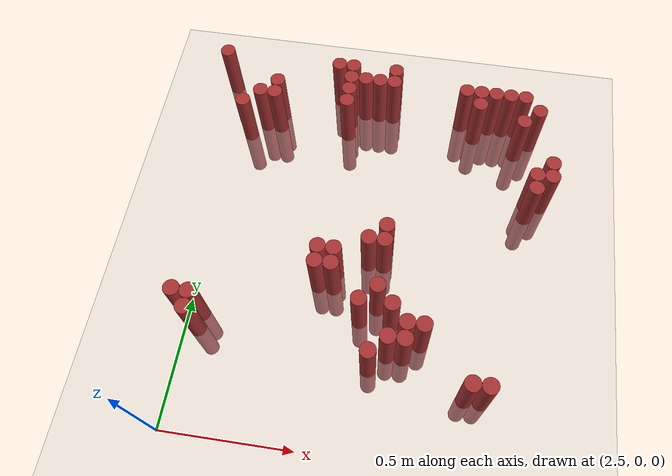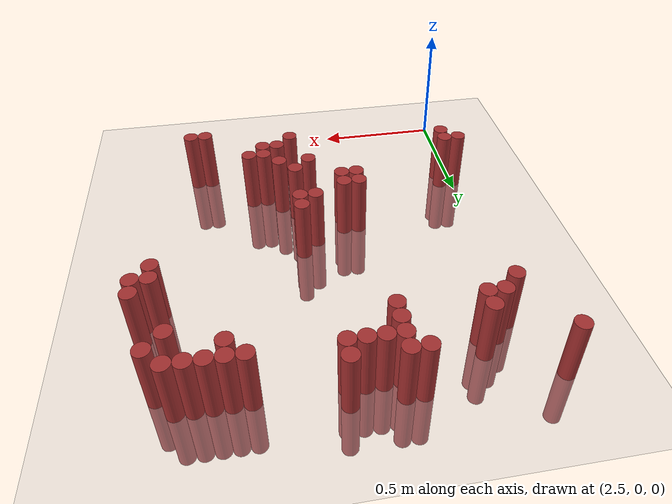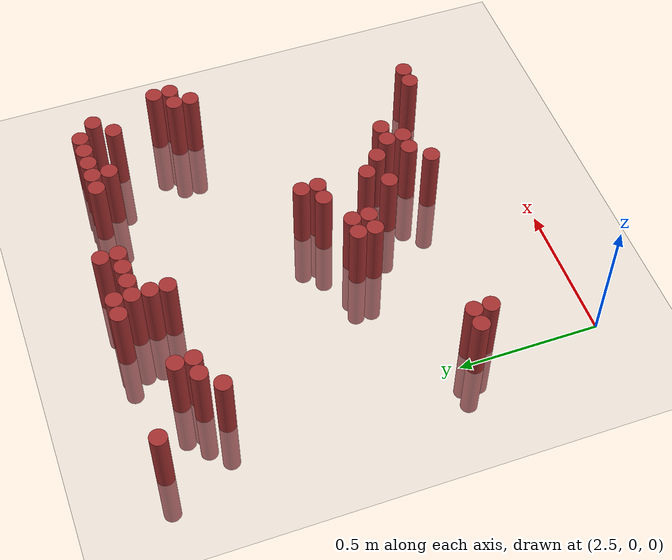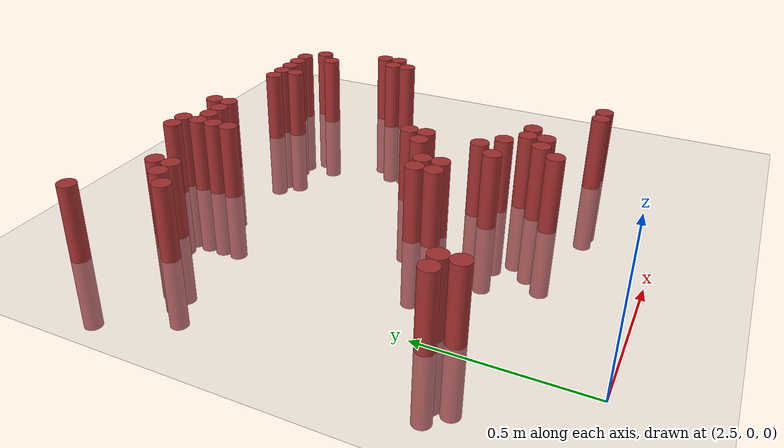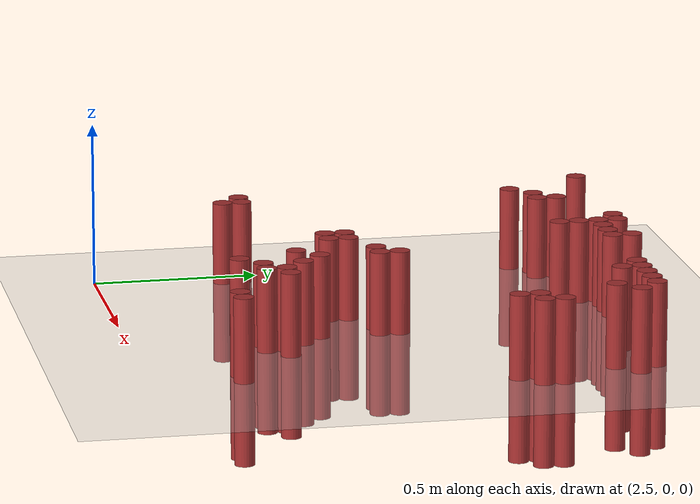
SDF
<sdf version="1.6">
 <world name="default">
  <model name="ground_plane">
   <static>1</static>
   <link name="link">
    <collision name="collision">
     <geometry><plane><normal>0 0 1</normal><size>100 100</size></plane></geometry>
     <surface><friction><ode><mu>100</mu><mu2>50</mu2></ode></friction></surface>
    </collision>
    <visual name="visual">
     <cast_shadows>0</cast_shadows>
     <geometry><plane><normal>0 0 1</normal><size>100 100</size></plane></geometry>
     <material>
      <script><uri>file://media/materials/scripts/gazebo.material</uri><name>Gazebo/Grey</name></script>
     </material>
    </visual>
   </link>
  </model>
  <model name="unit_cylinder_153">
   <static>1</static>
   <pose>2.430000 1.530000 0.000000 0.000000 0.000000 0.000000</pose>
   <link name="link">
    <inertial>
     <mass>1</mass>
     <inertia><ixx>0.145833</ixx><ixy>0</ixy><ixz>0</ixz><iyy>0.145833</iyy><iyz>0</iyz><izz>0.125</izz></inertia>
    </inertial>
    <collision name="collision">
     <geometry><cylinder><radius>0.030000</radius><length>0.5</length></cylinder></geometry>
    </collision>
    <visual name="visual">
     <geometry><cylinder><radius>0.030000</radius><length>0.5</length></cylinder></geometry>
     <material>
      <ambient>0.648000 0.192000 0.192000 1</ambient>
      <diffuse>0.648000 0.192000 0.192000 1</diffuse>
     </material>
     <material>
      <script><name>Gazebo/Grey</name><uri>file://media/materials/scripts/gazebo.material</uri></script>
     </material>
    </visual>
   </link>
  </model>
  <model name="unit_cylinder_154">
   <static>1</static>
   <pose>2.910000 1.530000 0.000000 0.000000 0.000000 0.000000</pose>
   <link name="link">
    <inertial>
     <mass>1</mass>
     <inertia><ixx>0.145833</ixx><ixy>0</ixy><ixz>0</ixz><iyy>0.145833</iyy><iyz>0</iyz><izz>0.125</izz></inertia>
    </inertial>
    <collision name="collision">
     <geometry><cylinder><radius>0.030000</radius><length>0.5</length></cylinder></geometry>
    </collision>
    <visual name="visual">
     <geometry><cylinder><radius>0.030000</radius><length>0.5</length></cylinder></geometry>
     <material>
      <ambient>0.648000 0.192000 0.192000 1</ambient>
      <diffuse>0.648000 0.192000 0.192000 1</diffuse>
     </material>
     <material>
      <script><name>Gazebo/Grey</name><uri>file://media/materials/scripts/gazebo.material</uri></script>
     </material>
    </visual>
   </link>
  </model>
  <model name="unit_cylinder_155">
   <static>1</static>
   <pose>2.970000 1.530000 0.000000 0.000000 0.000000 0.000000</pose>
   <link name="link">
    <inertial>
     <mass>1</mass>
     <inertia><ixx>0.145833</ixx><ixy>0</ixy><ixz>0</ixz><iyy>0.145833</iyy><iyz>0</iyz><izz>0.125</izz></inertia>
    </inertial>
    <collision name="collision">
     <geometry><cylinder><radius>0.030000</radius><length>0.5</length></cylinder></geometry>
    </collision>
    <visual name="visual">
     <geometry><cylinder><radius>0.030000</radius><length>0.5</length></cylinder></geometry>
     <material>
      <ambient>0.648000 0.192000 0.192000 1</ambient>
      <diffuse>0.648000 0.192000 0.192000 1</diffuse>
     </material>
     <material>
      <script><name>Gazebo/Grey</name><uri>file://media/materials/scripts/gazebo.material</uri></script>
     </material>
    </visual>
   </link>
  </model>
  <model name="unit_cylinder_156">
   <static>1</static>
   <pose>3.150000 1.530000 0.000000 0.000000 0.000000 0.000000</pose>
   <link name="link">
    <inertial>
     <mass>1</mass>
     <inertia><ixx>0.145833</ixx><ixy>0</ixy><ixz>0</ixz><iyy>0.145833</iyy><iyz>0</iyz><izz>0.125</izz></inertia>
    </inertial>
    <collision name="collision">
     <geometry><cylinder><radius>0.030000</radius><length>0.5</length></cylinder></geometry>
    </collision>
    <visual name="visual">
     <geometry><cylinder><radius>0.030000</radius><length>0.5</length></cylinder></geometry>
     <material>
      <ambient>0.648000 0.192000 0.192000 1</ambient>
      <diffuse>0.648000 0.192000 0.192000 1</diffuse>
     </material>
     <material>
      <script><name>Gazebo/Grey</name><uri>file://media/materials/scripts/gazebo.material</uri></script>
     </material>
    </visual>
   </link>
  </model>
  <model name="unit_cylinder_161">
   <static>1</static>
   <pose>2.970000 1.470000 0.000000 0.000000 0.000000 0.000000</pose>
   <link name="link">
    <inertial>
     <mass>1</mass>
     <inertia><ixx>0.145833</ixx><ixy>0</ixy><ixz>0</ixz><iyy>0.145833</iyy><iyz>0</iyz><izz>0.125</izz></inertia>
    </inertial>
    <collision name="collision">
     <geometry><cylinder><radius>0.030000</radius><length>0.5</length></cylinder></geometry>
    </collision>
    <visual name="visual">
     <geometry><cylinder><radius>0.030000</radius><length>0.5</length></cylinder></geometry>
     <material>
      <ambient>0.648000 0.192000 0.192000 1</ambient>
      <diffuse>0.648000 0.192000 0.192000 1</diffuse>
     </material>
     <material>
      <script><name>Gazebo/Grey</name><uri>file://media/materials/scripts/gazebo.material</uri></script>
     </material>
    </visual>
   </link>
  </model>
  <model name="unit_cylinder_162">
   <static>1</static>
   <pose>3.030000 1.470000 0.000000 0.000000 0.000000 0.000000</pose>
   <link name="link">
    <inertial>
     <mass>1</mass>
     <inertia><ixx>0.145833</ixx><ixy>0</ixy><ixz>0</ixz><iyy>0.145833</iyy><iyz>0</iyz><izz>0.125</izz></inertia>
    </inertial>
    <collision name="collision">
     <geometry><cylinder><radius>0.030000</radius><length>0.5</length></cylinder></geometry>
    </collision>
    <visual name="visual">
     <geometry><cylinder><radius>0.030000</radius><length>0.5</length></cylinder></geometry>
     <material>
      <ambient>0.648000 0.192000 0.192000 1</ambient>
      <diffuse>0.648000 0.192000 0.192000 1</diffuse>
     </material>
     <material>
      <script><name>Gazebo/Grey</name><uri>file://media/materials/scripts/gazebo.material</uri></script>
     </material>
    </visual>
   </link>
  </model>
  <model name="unit_cylinder_163">
   <static>1</static>
   <pose>3.090000 1.470000 0.000000 0.000000 0.000000 0.000000</pose>
   <link name="link">
    <inertial>
     <mass>1</mass>
     <inertia><ixx>0.145833</ixx><ixy>0</ixy><ixz>0</ixz><iyy>0.145833</iyy><iyz>0</iyz><izz>0.125</izz></inertia>
    </inertial>
    <collision name="collision">
     <geometry><cylinder><radius>0.030000</radius><length>0.5</length></cylinder></geometry>
    </collision>
    <visual name="visual">
     <geometry><cylinder><radius>0.030000</radius><length>0.5</length></cylinder></geometry>
     <material>
      <ambient>0.648000 0.192000 0.192000 1</ambient>
      <diffuse>0.648000 0.192000 0.192000 1</diffuse>
     </material>
     <material>
      <script><name>Gazebo/Grey</name><uri>file://media/materials/scripts/gazebo.material</uri></script>
     </material>
    </visual>
   </link>
  </model>
  <model name="unit_cylinder_164">
   <static>1</static>
   <pose>3.150000 1.470000 0.000000 0.000000 0.000000 0.000000</pose>
   <link name="link">
    <inertial>
     <mass>1</mass>
     <inertia><ixx>0.145833</ixx><ixy>0</ixy><ixz>0</ixz><iyy>0.145833</iyy><iyz>0</iyz><izz>0.125</izz></inertia>
    </inertial>
    <collision name="collision">
     <geometry><cylinder><radius>0.030000</radius><length>0.5</length></cylinder></geometry>
    </collision>
    <visual name="visual">
     <geometry><cylinder><radius>0.030000</radius><length>0.5</length></cylinder></geometry>
     <material>
      <ambient>0.648000 0.192000 0.192000 1</ambient>
      <diffuse>0.648000 0.192000 0.192000 1</diffuse>
     </material>
     <material>
      <script><name>Gazebo/Grey</name><uri>file://media/materials/scripts/gazebo.material</uri></script>
     </material>
    </visual>
   </link>
  </model>
  <model name="unit_cylinder_165">
   <static>1</static>
   <pose>3.450000 1.470000 0.000000 0.000000 0.000000 0.000000</pose>
   <link name="link">
    <inertial>
     <mass>1</mass>
     <inertia><ixx>0.145833</ixx><ixy>0</ixy><ixz>0</ixz><iyy>0.145833</iyy><iyz>0</iyz><izz>0.125</izz></inertia>
    </inertial>
    <collision name="collision">
     <geometry><cylinder><radius>0.030000</radius><length>0.5</length></cylinder></geometry>
    </collision>
    <visual name="visual">
     <geometry><cylinder><radius>0.030000</radius><length>0.5</length></cylinder></geometry>
     <material>
      <ambient>0.648000 0.192000 0.192000 1</ambient>
      <diffuse>0.648000 0.192000 0.192000 1</diffuse>
     </material>
     <material>
      <script><name>Gazebo/Grey</name><uri>file://media/materials/scripts/gazebo.material</uri></script>
     </material>
    </visual>
   </link>
  </model>
  <model name="unit_cylinder_166">
   <static>1</static>
   <pose>3.510000 1.470000 0.000000 0.000000 0.000000 0.000000</pose>
   <link name="link">
    <inertial>
     <mass>1</mass>
     <inertia><ixx>0.145833</ixx><ixy>0</ixy><ixz>0</ixz><iyy>0.145833</iyy><iyz>0</iyz><izz>0.125</izz></inertia>
    </inertial>
    <collision name="collision">
     <geometry><cylinder><radius>0.030000</radius><length>0.5</length></cylinder></geometry>
    </collision>
    <visual name="visual">
     <geometry><cylinder><radius>0.030000</radius><length>0.5</length></cylinder></geometry>
     <material>
      <ambient>0.648000 0.192000 0.192000 1</ambient>
      <diffuse>0.648000 0.192000 0.192000 1</diffuse>
     </material>
     <material>
      <script><name>Gazebo/Grey</name><uri>file://media/materials/scripts/gazebo.material</uri></script>
     </material>
    </visual>
   </link>
  </model>
  <model name="unit_cylinder_167">
   <static>1</static>
   <pose>3.570000 1.470000 0.000000 0.000000 0.000000 0.000000</pose>
   <link name="link">
    <inertial>
     <mass>1</mass>
     <inertia><ixx>0.145833</ixx><ixy>0</ixy><ixz>0</ixz><iyy>0.145833</iyy><iyz>0</iyz><izz>0.125</izz></inertia>
    </inertial>
    <collision name="collision">
     <geometry><cylinder><radius>0.030000</radius><length>0.5</length></cylinder></geometry>
    </collision>
    <visual name="visual">
     <geometry><cylinder><radius>0.030000</radius><length>0.5</length></cylinder></geometry>
     <material>
      <ambient>0.648000 0.192000 0.192000 1</ambient>
      <diffuse>0.648000 0.192000 0.192000 1</diffuse>
     </material>
     <material>
      <script><name>Gazebo/Grey</name><uri>file://media/materials/scripts/gazebo.material</uri></script>
     </material>
    </visual>
   </link>
  </model>
  <model name="unit_cylinder_168">
   <static>1</static>
   <pose>3.630000 1.470000 0.000000 0.000000 0.000000 0.000000</pose>
   <link name="link">
    <inertial>
     <mass>1</mass>
     <inertia><ixx>0.145833</ixx><ixy>0</ixy><ixz>0</ixz><iyy>0.145833</iyy><iyz>0</iyz><izz>0.125</izz></inertia>
    </inertial>
    <collision name="collision">
     <geometry><cylinder><radius>0.030000</radius><length>0.5</length></cylinder></geometry>
    </collision>
    <visual name="visual">
     <geometry><cylinder><radius>0.030000</radius><length>0.5</length></cylinder></geometry>
     <material>
      <ambient>0.648000 0.192000 0.192000 1</ambient>
      <diffuse>0.648000 0.192000 0.192000 1</diffuse>
     </material>
     <material>
      <script><name>Gazebo/Grey</name><uri>file://media/materials/scripts/gazebo.material</uri></script>
     </material>
    </visual>
   </link>
  </model>
  <model name="unit_cylinder_169">
   <static>1</static>
   <pose>3.690000 1.470000 0.000000 0.000000 0.000000 0.000000</pose>
   <link name="link">
    <inertial>
     <mass>1</mass>
     <inertia><ixx>0.145833</ixx><ixy>0</ixy><ixz>0</ixz><iyy>0.145833</iyy><iyz>0</iyz><izz>0.125</izz></inertia>
    </inertial>
    <collision name="collision">
     <geometry><cylinder><radius>0.030000</radius><length>0.5</length></cylinder></geometry>
    </collision>
    <visual name="visual">
     <geometry><cylinder><radius>0.030000</radius><length>0.5</length></cylinder></geometry>
     <material>
      <ambient>0.648000 0.192000 0.192000 1</ambient>
      <diffuse>0.648000 0.192000 0.192000 1</diffuse>
     </material>
     <material>
      <script><name>Gazebo/Grey</name><uri>file://media/materials/scripts/gazebo.material</uri></script>
     </material>
    </visual>
   </link>
  </model>
  <model name="unit_cylinder_172">
   <static>1</static>
   <pose>2.670000 1.410000 0.000000 0.000000 0.000000 0.000000</pose>
   <link name="link">
    <inertial>
     <mass>1</mass>
     <inertia><ixx>0.145833</ixx><ixy>0</ixy><ixz>0</ixz><iyy>0.145833</iyy><iyz>0</iyz><izz>0.125</izz></inertia>
    </inertial>
    <collision name="collision">
     <geometry><cylinder><radius>0.030000</radius><length>0.5</length></cylinder></geometry>
    </collision>
    <visual name="visual">
     <geometry><cylinder><radius>0.030000</radius><length>0.5</length></cylinder></geometry>
     <material>
      <ambient>0.648000 0.192000 0.192000 1</ambient>
      <diffuse>0.648000 0.192000 0.192000 1</diffuse>
     </material>
     <material>
      <script><name>Gazebo/Grey</name><uri>file://media/materials/scripts/gazebo.material</uri></script>
     </material>
    </visual>
   </link>
  </model>
  <model name="unit_cylinder_173">
   <static>1</static>
   <pose>2.970000 1.410000 0.000000 0.000000 0.000000 0.000000</pose>
   <link name="link">
    <inertial>
     <mass>1</mass>
     <inertia><ixx>0.145833</ixx><ixy>0</ixy><ixz>0</ixz><iyy>0.145833</iyy><iyz>0</iyz><izz>0.125</izz></inertia>
    </inertial>
    <collision name="collision">
     <geometry><cylinder><radius>0.030000</radius><length>0.5</length></cylinder></geometry>
    </collision>
    <visual name="visual">
     <geometry><cylinder><radius>0.030000</radius><length>0.5</length></cylinder></geometry>
     <material>
      <ambient>0.648000 0.192000 0.192000 1</ambient>
      <diffuse>0.648000 0.192000 0.192000 1</diffuse>
     </material>
     <material>
      <script><name>Gazebo/Grey</name><uri>file://media/materials/scripts/gazebo.material</uri></script>
     </material>
    </visual>
   </link>
  </model>
  <model name="unit_cylinder_174">
   <static>1</static>
   <pose>3.510000 1.410000 0.000000 0.000000 0.000000 0.000000</pose>
   <link name="link">
    <inertial>
     <mass>1</mass>
     <inertia><ixx>0.145833</ixx><ixy>0</ixy><ixz>0</ixz><iyy>0.145833</iyy><iyz>0</iyz><izz>0.125</izz></inertia>
    </inertial>
    <collision name="collision">
     <geometry><cylinder><radius>0.030000</radius><length>0.5</length></cylinder></geometry>
    </collision>
    <visual name="visual">
     <geometry><cylinder><radius>0.030000</radius><length>0.5</length></cylinder></geometry>
     <material>
      <ambient>0.648000 0.192000 0.192000 1</ambient>
      <diffuse>0.648000 0.192000 0.192000 1</diffuse>
     </material>
     <material>
      <script><name>Gazebo/Grey</name><uri>file://media/materials/scripts/gazebo.material</uri></script>
     </material>
    </visual>
   </link>
  </model>
  <model name="unit_cylinder_175">
   <static>1</static>
   <pose>3.750000 1.410000 0.000000 0.000000 0.000000 0.000000</pose>
   <link name="link">
    <inertial>
     <mass>1</mass>
     <inertia><ixx>0.145833</ixx><ixy>0</ixy><ixz>0</ixz><iyy>0.145833</iyy><iyz>0</iyz><izz>0.125</izz></inertia>
    </inertial>
    <collision name="collision">
     <geometry><cylinder><radius>0.030000</radius><length>0.5</length></cylinder></geometry>
    </collision>
    <visual name="visual">
     <geometry><cylinder><radius>0.030000</radius><length>0.5</length></cylinder></geometry>
     <material>
      <ambient>0.648000 0.192000 0.192000 1</ambient>
      <diffuse>0.648000 0.192000 0.192000 1</diffuse>
     </material>
     <material>
      <script><name>Gazebo/Grey</name><uri>file://media/materials/scripts/gazebo.material</uri></script>
     </material>
    </visual>
   </link>
  </model>
  <model name="unit_cylinder_179">
   <static>1</static>
   <pose>2.610000 1.350000 0.000000 0.000000 0.000000 0.000000</pose>
   <link name="link">
    <inertial>
     <mass>1</mass>
     <inertia><ixx>0.145833</ixx><ixy>0</ixy><ixz>0</ixz><iyy>0.145833</iyy><iyz>0</iyz><izz>0.125</izz></inertia>
    </inertial>
    <collision name="collision">
     <geometry><cylinder><radius>0.030000</radius><length>0.5</length></cylinder></geometry>
    </collision>
    <visual name="visual">
     <geometry><cylinder><radius>0.030000</radius><length>0.5</length></cylinder></geometry>
     <material>
      <ambient>0.648000 0.192000 0.192000 1</ambient>
      <diffuse>0.648000 0.192000 0.192000 1</diffuse>
     </material>
     <material>
      <script><name>Gazebo/Grey</name><uri>file://media/materials/scripts/gazebo.material</uri></script>
     </material>
    </visual>
   </link>
  </model>
  <model name="unit_cylinder_180">
   <static>1</static>
   <pose>2.670000 1.350000 0.000000 0.000000 0.000000 0.000000</pose>
   <link name="link">
    <inertial>
     <mass>1</mass>
     <inertia><ixx>0.145833</ixx><ixy>0</ixy><ixz>0</ixz><iyy>0.145833</iyy><iyz>0</iyz><izz>0.125</izz></inertia>
    </inertial>
    <collision name="collision">
     <geometry><cylinder><radius>0.030000</radius><length>0.5</length></cylinder></geometry>
    </collision>
    <visual name="visual">
     <geometry><cylinder><radius>0.030000</radius><length>0.5</length></cylinder></geometry>
     <material>
      <ambient>0.648000 0.192000 0.192000 1</ambient>
      <diffuse>0.648000 0.192000 0.192000 1</diffuse>
     </material>
     <material>
      <script><name>Gazebo/Grey</name><uri>file://media/materials/scripts/gazebo.material</uri></script>
     </material>
    </visual>
   </link>
  </model>
  <model name="unit_cylinder_181">
   <static>1</static>
   <pose>2.970000 1.350000 0.000000 0.000000 0.000000 0.000000</pose>
   <link name="link">
    <inertial>
     <mass>1</mass>
     <inertia><ixx>0.145833</ixx><ixy>0</ixy><ixz>0</ixz><iyy>0.145833</iyy><iyz>0</iyz><izz>0.125</izz></inertia>
    </inertial>
    <collision name="collision">
     <geometry><cylinder><radius>0.030000</radius><length>0.5</length></cylinder></geometry>
    </collision>
    <visual name="visual">
     <geometry><cylinder><radius>0.030000</radius><length>0.5</length></cylinder></geometry>
     <material>
      <ambient>0.648000 0.192000 0.192000 1</ambient>
      <diffuse>0.648000 0.192000 0.192000 1</diffuse>
     </material>
     <material>
      <script><name>Gazebo/Grey</name><uri>file://media/materials/scripts/gazebo.material</uri></script>
     </material>
    </visual>
   </link>
  </model>
  <model name="unit_cylinder_182">
   <static>1</static>
   <pose>3.690000 1.350000 0.000000 0.000000 0.000000 0.000000</pose>
   <link name="link">
    <inertial>
     <mass>1</mass>
     <inertia><ixx>0.145833</ixx><ixy>0</ixy><ixz>0</ixz><iyy>0.145833</iyy><iyz>0</iyz><izz>0.125</izz></inertia>
    </inertial>
    <collision name="collision">
     <geometry><cylinder><radius>0.030000</radius><length>0.5</length></cylinder></geometry>
    </collision>
    <visual name="visual">
     <geometry><cylinder><radius>0.030000</radius><length>0.5</length></cylinder></geometry>
     <material>
      <ambient>0.648000 0.192000 0.192000 1</ambient>
      <diffuse>0.648000 0.192000 0.192000 1</diffuse>
     </material>
     <material>
      <script><name>Gazebo/Grey</name><uri>file://media/materials/scripts/gazebo.material</uri></script>
     </material>
    </visual>
   </link>
  </model>
  <model name="unit_cylinder_184">
   <static>1</static>
   <pose>2.550000 1.290000 0.000000 0.000000 0.000000 0.000000</pose>
   <link name="link">
    <inertial>
     <mass>1</mass>
     <inertia><ixx>0.145833</ixx><ixy>0</ixy><ixz>0</ixz><iyy>0.145833</iyy><iyz>0</iyz><izz>0.125</izz></inertia>
    </inertial>
    <collision name="collision">
     <geometry><cylinder><radius>0.030000</radius><length>0.5</length></cylinder></geometry>
    </collision>
    <visual name="visual">
     <geometry><cylinder><radius>0.030000</radius><length>0.5</length></cylinder></geometry>
     <material>
      <ambient>0.648000 0.192000 0.192000 1</ambient>
      <diffuse>0.648000 0.192000 0.192000 1</diffuse>
     </material>
     <material>
      <script><name>Gazebo/Grey</name><uri>file://media/materials/scripts/gazebo.material</uri></script>
     </material>
    </visual>
   </link>
  </model>
  <model name="unit_cylinder_185">
   <static>1</static>
   <pose>3.810000 1.170000 0.000000 0.000000 0.000000 0.000000</pose>
   <link name="link">
    <inertial>
     <mass>1</mass>
     <inertia><ixx>0.145833</ixx><ixy>0</ixy><ixz>0</ixz><iyy>0.145833</iyy><iyz>0</iyz><izz>0.125</izz></inertia>
    </inertial>
    <collision name="collision">
     <geometry><cylinder><radius>0.030000</radius><length>0.5</length></cylinder></geometry>
    </collision>
    <visual name="visual">
     <geometry><cylinder><radius>0.030000</radius><length>0.5</length></cylinder></geometry>
     <material>
      <ambient>0.648000 0.192000 0.192000 1</ambient>
      <diffuse>0.648000 0.192000 0.192000 1</diffuse>
     </material>
     <material>
      <script><name>Gazebo/Grey</name><uri>file://media/materials/scripts/gazebo.material</uri></script>
     </material>
    </visual>
   </link>
  </model>
  <model name="unit_cylinder_186">
   <static>1</static>
   <pose>3.750000 1.110000 0.000000 0.000000 0.000000 0.000000</pose>
   <link name="link">
    <inertial>
     <mass>1</mass>
     <inertia><ixx>0.145833</ixx><ixy>0</ixy><ixz>0</ixz><iyy>0.145833</iyy><iyz>0</iyz><izz>0.125</izz></inertia>
    </inertial>
    <collision name="collision">
     <geometry><cylinder><radius>0.030000</radius><length>0.5</length></cylinder></geometry>
    </collision>
    <visual name="visual">
     <geometry><cylinder><radius>0.030000</radius><length>0.5</length></cylinder></geometry>
     <material>
      <ambient>0.648000 0.192000 0.192000 1</ambient>
      <diffuse>0.648000 0.192000 0.192000 1</diffuse>
     </material>
     <material>
      <script><name>Gazebo/Grey</name><uri>file://media/materials/scripts/gazebo.material</uri></script>
     </material>
    </visual>
   </link>
  </model>
  <model name="unit_cylinder_187">
   <static>1</static>
   <pose>3.810000 1.110000 0.000000 0.000000 0.000000 0.000000</pose>
   <link name="link">
    <inertial>
     <mass>1</mass>
     <inertia><ixx>0.145833</ixx><ixy>0</ixy><ixz>0</ixz><iyy>0.145833</iyy><iyz>0</iyz><izz>0.125</izz></inertia>
    </inertial>
    <collision name="collision">
     <geometry><cylinder><radius>0.030000</radius><length>0.5</length></cylinder></geometry>
    </collision>
    <visual name="visual">
     <geometry><cylinder><radius>0.030000</radius><length>0.5</length></cylinder></geometry>
     <material>
      <ambient>0.648000 0.192000 0.192000 1</ambient>
      <diffuse>0.648000 0.192000 0.192000 1</diffuse>
     </material>
     <material>
      <script><name>Gazebo/Grey</name><uri>file://media/materials/scripts/gazebo.material</uri></script>
     </material>
    </visual>
   </link>
  </model>
  <model name="unit_cylinder_188">
   <static>1</static>
   <pose>3.750000 1.050000 0.000000 0.000000 0.000000 0.000000</pose>
   <link name="link">
    <inertial>
     <mass>1</mass>
     <inertia><ixx>0.145833</ixx><ixy>0</ixy><ixz>0</ixz><iyy>0.145833</iyy><iyz>0</iyz><izz>0.125</izz></inertia>
    </inertial>
    <collision name="collision">
     <geometry><cylinder><radius>0.030000</radius><length>0.5</length></cylinder></geometry>
    </collision>
    <visual name="visual">
     <geometry><cylinder><radius>0.030000</radius><length>0.5</length></cylinder></geometry>
     <material>
      <ambient>0.648000 0.192000 0.192000 1</ambient>
      <diffuse>0.648000 0.192000 0.192000 1</diffuse>
     </material>
     <material>
      <script><name>Gazebo/Grey</name><uri>file://media/materials/scripts/gazebo.material</uri></script>
     </material>
    </visual>
   </link>
  </model>
  <model name="unit_cylinder_189">
   <static>1</static>
   <pose>3.210000 0.810000 0.000000 0.000000 0.000000 0.000000</pose>
   <link name="link">
    <inertial>
     <mass>1</mass>
     <inertia><ixx>0.145833</ixx><ixy>0</ixy><ixz>0</ixz><iyy>0.145833</iyy><iyz>0</iyz><izz>0.125</izz></inertia>
    </inertial>
    <collision name="collision">
     <geometry><cylinder><radius>0.030000</radius><length>0.5</length></cylinder></geometry>
    </collision>
    <visual name="visual">
     <geometry><cylinder><radius>0.030000</radius><length>0.5</length></cylinder></geometry>
     <material>
      <ambient>0.648000 0.192000 0.192000 1</ambient>
      <diffuse>0.648000 0.192000 0.192000 1</diffuse>
     </material>
     <material>
      <script><name>Gazebo/Grey</name><uri>file://media/materials/scripts/gazebo.material</uri></script>
     </material>
    </visual>
   </link>
  </model>
  <model name="unit_cylinder_191">
   <static>1</static>
   <pose>3.150000 0.750000 0.000000 0.000000 0.000000 0.000000</pose>
   <link name="link">
    <inertial>
     <mass>1</mass>
     <inertia><ixx>0.145833</ixx><ixy>0</ixy><ixz>0</ixz><iyy>0.145833</iyy><iyz>0</iyz><izz>0.125</izz></inertia>
    </inertial>
    <collision name="collision">
     <geometry><cylinder><radius>0.030000</radius><length>0.5</length></cylinder></geometry>
    </collision>
    <visual name="visual">
     <geometry><cylinder><radius>0.030000</radius><length>0.5</length></cylinder></geometry>
     <material>
      <ambient>0.648000 0.192000 0.192000 1</ambient>
      <diffuse>0.648000 0.192000 0.192000 1</diffuse>
     </material>
     <material>
      <script><name>Gazebo/Grey</name><uri>file://media/materials/scripts/gazebo.material</uri></script>
     </material>
    </visual>
   </link>
  </model>
  <model name="unit_cylinder_192">
   <static>1</static>
   <pose>3.210000 0.750000 0.000000 0.000000 0.000000 0.000000</pose>
   <link name="link">
    <inertial>
     <mass>1</mass>
     <inertia><ixx>0.145833</ixx><ixy>0</ixy><ixz>0</ixz><iyy>0.145833</iyy><iyz>0</iyz><izz>0.125</izz></inertia>
    </inertial>
    <collision name="collision">
     <geometry><cylinder><radius>0.030000</radius><length>0.5</length></cylinder></geometry>
    </collision>
    <visual name="visual">
     <geometry><cylinder><radius>0.030000</radius><length>0.5</length></cylinder></geometry>
     <material>
      <ambient>0.648000 0.192000 0.192000 1</ambient>
      <diffuse>0.648000 0.192000 0.192000 1</diffuse>
     </material>
     <material>
      <script><name>Gazebo/Grey</name><uri>file://media/materials/scripts/gazebo.material</uri></script>
     </material>
    </visual>
   </link>
  </model>
  <model name="unit_cylinder_195">
   <static>1</static>
   <pose>2.970000 0.690000 0.000000 0.000000 0.000000 0.000000</pose>
   <link name="link">
    <inertial>
     <mass>1</mass>
     <inertia><ixx>0.145833</ixx><ixy>0</ixy><ixz>0</ixz><iyy>0.145833</iyy><iyz>0</iyz><izz>0.125</izz></inertia>
    </inertial>
    <collision name="collision">
     <geometry><cylinder><radius>0.030000</radius><length>0.5</length></cylinder></geometry>
    </collision>
    <visual name="visual">
     <geometry><cylinder><radius>0.030000</radius><length>0.5</length></cylinder></geometry>
     <material>
      <ambient>0.648000 0.192000 0.192000 1</ambient>
      <diffuse>0.648000 0.192000 0.192000 1</diffuse>
     </material>
     <material>
      <script><name>Gazebo/Grey</name><uri>file://media/materials/scripts/gazebo.material</uri></script>
     </material>
    </visual>
   </link>
  </model>
  <model name="unit_cylinder_196">
   <static>1</static>
   <pose>3.030000 0.690000 0.000000 0.000000 0.000000 0.000000</pose>
   <link name="link">
    <inertial>
     <mass>1</mass>
     <inertia><ixx>0.145833</ixx><ixy>0</ixy><ixz>0</ixz><iyy>0.145833</iyy><iyz>0</iyz><izz>0.125</izz></inertia>
    </inertial>
    <collision name="collision">
     <geometry><cylinder><radius>0.030000</radius><length>0.5</length></cylinder></geometry>
    </collision>
    <visual name="visual">
     <geometry><cylinder><radius>0.030000</radius><length>0.5</length></cylinder></geometry>
     <material>
      <ambient>0.648000 0.192000 0.192000 1</ambient>
      <diffuse>0.648000 0.192000 0.192000 1</diffuse>
     </material>
     <material>
      <script><name>Gazebo/Grey</name><uri>file://media/materials/scripts/gazebo.material</uri></script>
     </material>
    </visual>
   </link>
  </model>
  <model name="unit_cylinder_197">
   <static>1</static>
   <pose>2.970000 0.630000 0.000000 0.000000 0.000000 0.000000</pose>
   <link name="link">
    <inertial>
     <mass>1</mass>
     <inertia><ixx>0.145833</ixx><ixy>0</ixy><ixz>0</ixz><iyy>0.145833</iyy><iyz>0</iyz><izz>0.125</izz></inertia>
    </inertial>
    <collision name="collision">
     <geometry><cylinder><radius>0.030000</radius><length>0.5</length></cylinder></geometry>
    </collision>
    <visual name="visual">
     <geometry><cylinder><radius>0.030000</radius><length>0.5</length></cylinder></geometry>
     <material>
      <ambient>0.648000 0.192000 0.192000 1</ambient>
      <diffuse>0.648000 0.192000 0.192000 1</diffuse>
     </material>
     <material>
      <script><name>Gazebo/Grey</name><uri>file://media/materials/scripts/gazebo.material</uri></script>
     </material>
    </visual>
   </link>
  </model>
  <model name="unit_cylinder_198">
   <static>1</static>
   <pose>3.030000 0.630000 0.000000 0.000000 0.000000 0.000000</pose>
   <link name="link">
    <inertial>
     <mass>1</mass>
     <inertia><ixx>0.145833</ixx><ixy>0</ixy><ixz>0</ixz><iyy>0.145833</iyy><iyz>0</iyz><izz>0.125</izz></inertia>
    </inertial>
    <collision name="collision">
     <geometry><cylinder><radius>0.030000</radius><length>0.5</length></cylinder></geometry>
    </collision>
    <visual name="visual">
     <geometry><cylinder><radius>0.030000</radius><length>0.5</length></cylinder></geometry>
     <material>
      <ambient>0.648000 0.192000 0.192000 1</ambient>
      <diffuse>0.648000 0.192000 0.192000 1</diffuse>
     </material>
     <material>
      <script><name>Gazebo/Grey</name><uri>file://media/materials/scripts/gazebo.material</uri></script>
     </material>
    </visual>
   </link>
  </model>
  <model name="unit_cylinder_199">
   <static>1</static>
   <pose>3.210000 0.570000 0.000000 0.000000 0.000000 0.000000</pose>
   <link name="link">
    <inertial>
     <mass>1</mass>
     <inertia><ixx>0.145833</ixx><ixy>0</ixy><ixz>0</ixz><iyy>0.145833</iyy><iyz>0</iyz><izz>0.125</izz></inertia>
    </inertial>
    <collision name="collision">
     <geometry><cylinder><radius>0.030000</radius><length>0.5</length></cylinder></geometry>
    </collision>
    <visual name="visual">
     <geometry><cylinder><radius>0.030000</radius><length>0.5</length></cylinder></geometry>
     <material>
      <ambient>0.648000 0.192000 0.192000 1</ambient>
      <diffuse>0.648000 0.192000 0.192000 1</diffuse>
     </material>
     <material>
      <script><name>Gazebo/Grey</name><uri>file://media/materials/scripts/gazebo.material</uri></script>
     </material>
    </visual>
   </link>
  </model>
  <model name="unit_cylinder_201">
   <static>1</static>
   <pose>3.150000 0.510000 0.000000 0.000000 0.000000 0.000000</pose>
   <link name="link">
    <inertial>
     <mass>1</mass>
     <inertia><ixx>0.145833</ixx><ixy>0</ixy><ixz>0</ixz><iyy>0.145833</iyy><iyz>0</iyz><izz>0.125</izz></inertia>
    </inertial>
    <collision name="collision">
     <geometry><cylinder><radius>0.030000</radius><length>0.5</length></cylinder></geometry>
    </collision>
    <visual name="visual">
     <geometry><cylinder><radius>0.030000</radius><length>0.5</length></cylinder></geometry>
     <material>
      <ambient>0.648000 0.192000 0.192000 1</ambient>
      <diffuse>0.648000 0.192000 0.192000 1</diffuse>
     </material>
     <material>
      <script><name>Gazebo/Grey</name><uri>file://media/materials/scripts/gazebo.material</uri></script>
     </material>
    </visual>
   </link>
  </model>
  <model name="unit_cylinder_202">
   <static>1</static>
   <pose>3.270000 0.510000 0.000000 0.000000 0.000000 0.000000</pose>
   <link name="link">
    <inertial>
     <mass>1</mass>
     <inertia><ixx>0.145833</ixx><ixy>0</ixy><ixz>0</ixz><iyy>0.145833</iyy><iyz>0</iyz><izz>0.125</izz></inertia>
    </inertial>
    <collision name="collision">
     <geometry><cylinder><radius>0.030000</radius><length>0.5</length></cylinder></geometry>
    </collision>
    <visual name="visual">
     <geometry><cylinder><radius>0.030000</radius><length>0.5</length></cylinder></geometry>
     <material>
      <ambient>0.648000 0.192000 0.192000 1</ambient>
      <diffuse>0.648000 0.192000 0.192000 1</diffuse>
     </material>
     <material>
      <script><name>Gazebo/Grey</name><uri>file://media/materials/scripts/gazebo.material</uri></script>
     </material>
    </visual>
   </link>
  </model>
  <model name="unit_cylinder_205">
   <static>1</static>
   <pose>2.490000 0.450000 0.000000 0.000000 0.000000 0.000000</pose>
   <link name="link">
    <inertial>
     <mass>1</mass>
     <inertia><ixx>0.145833</ixx><ixy>0</ixy><ixz>0</ixz><iyy>0.145833</iyy><iyz>0</iyz><izz>0.125</izz></inertia>
    </inertial>
    <collision name="collision">
     <geometry><cylinder><radius>0.030000</radius><length>0.5</length></cylinder></geometry>
    </collision>
    <visual name="visual">
     <geometry><cylinder><radius>0.030000</radius><length>0.5</length></cylinder></geometry>
     <material>
      <ambient>0.648000 0.192000 0.192000 1</ambient>
      <diffuse>0.648000 0.192000 0.192000 1</diffuse>
     </material>
     <material>
      <script><name>Gazebo/Grey</name><uri>file://media/materials/scripts/gazebo.material</uri></script>
     </material>
    </visual>
   </link>
  </model>
  <model name="unit_cylinder_206">
   <static>1</static>
   <pose>2.550000 0.450000 0.000000 0.000000 0.000000 0.000000</pose>
   <link name="link">
    <inertial>
     <mass>1</mass>
     <inertia><ixx>0.145833</ixx><ixy>0</ixy><ixz>0</ixz><iyy>0.145833</iyy><iyz>0</iyz><izz>0.125</izz></inertia>
    </inertial>
    <collision name="collision">
     <geometry><cylinder><radius>0.030000</radius><length>0.5</length></cylinder></geometry>
    </collision>
    <visual name="visual">
     <geometry><cylinder><radius>0.030000</radius><length>0.5</length></cylinder></geometry>
     <material>
      <ambient>0.648000 0.192000 0.192000 1</ambient>
      <diffuse>0.648000 0.192000 0.192000 1</diffuse>
     </material>
     <material>
      <script><name>Gazebo/Grey</name><uri>file://media/materials/scripts/gazebo.material</uri></script>
     </material>
    </visual>
   </link>
  </model>
  <model name="unit_cylinder_207">
   <static>1</static>
   <pose>3.330000 0.450000 0.000000 0.000000 0.000000 0.000000</pose>
   <link name="link">
    <inertial>
     <mass>1</mass>
     <inertia><ixx>0.145833</ixx><ixy>0</ixy><ixz>0</ixz><iyy>0.145833</iyy><iyz>0</iyz><izz>0.125</izz></inertia>
    </inertial>
    <collision name="collision">
     <geometry><cylinder><radius>0.030000</radius><length>0.5</length></cylinder></geometry>
    </collision>
    <visual name="visual">
     <geometry><cylinder><radius>0.030000</radius><length>0.5</length></cylinder></geometry>
     <material>
      <ambient>0.648000 0.192000 0.192000 1</ambient>
      <diffuse>0.648000 0.192000 0.192000 1</diffuse>
     </material>
     <material>
      <script><name>Gazebo/Grey</name><uri>file://media/materials/scripts/gazebo.material</uri></script>
     </material>
    </visual>
   </link>
  </model>
  <model name="unit_cylinder_208">
   <static>1</static>
   <pose>3.390000 0.450000 0.000000 0.000000 0.000000 0.000000</pose>
   <link name="link">
    <inertial>
     <mass>1</mass>
     <inertia><ixx>0.145833</ixx><ixy>0</ixy><ixz>0</ixz><iyy>0.145833</iyy><iyz>0</iyz><izz>0.125</izz></inertia>
    </inertial>
    <collision name="collision">
     <geometry><cylinder><radius>0.030000</radius><length>0.5</length></cylinder></geometry>
    </collision>
    <visual name="visual">
     <geometry><cylinder><radius>0.030000</radius><length>0.5</length></cylinder></geometry>
     <material>
      <ambient>0.648000 0.192000 0.192000 1</ambient>
      <diffuse>0.648000 0.192000 0.192000 1</diffuse>
     </material>
     <material>
      <script><name>Gazebo/Grey</name><uri>file://media/materials/scripts/gazebo.material</uri></script>
     </material>
    </visual>
   </link>
  </model>
  <model name="unit_cylinder_209">
   <static>1</static>
   <pose>2.550000 0.390000 0.000000 0.000000 0.000000 0.000000</pose>
   <link name="link">
    <inertial>
     <mass>1</mass>
     <inertia><ixx>0.145833</ixx><ixy>0</ixy><ixz>0</ixz><iyy>0.145833</iyy><iyz>0</iyz><izz>0.125</izz></inertia>
    </inertial>
    <collision name="collision">
     <geometry><cylinder><radius>0.030000</radius><length>0.5</length></cylinder></geometry>
    </collision>
    <visual name="visual">
     <geometry><cylinder><radius>0.030000</radius><length>0.5</length></cylinder></geometry>
     <material>
      <ambient>0.648000 0.192000 0.192000 1</ambient>
      <diffuse>0.648000 0.192000 0.192000 1</diffuse>
     </material>
     <material>
      <script><name>Gazebo/Grey</name><uri>file://media/materials/scripts/gazebo.material</uri></script>
     </material>
    </visual>
   </link>
  </model>
  <model name="unit_cylinder_210">
   <static>1</static>
   <pose>3.270000 0.390000 0.000000 0.000000 0.000000 0.000000</pose>
   <link name="link">
    <inertial>
     <mass>1</mass>
     <inertia><ixx>0.145833</ixx><ixy>0</ixy><ixz>0</ixz><iyy>0.145833</iyy><iyz>0</iyz><izz>0.125</izz></inertia>
    </inertial>
    <collision name="collision">
     <geometry><cylinder><radius>0.030000</radius><length>0.5</length></cylinder></geometry>
    </collision>
    <visual name="visual">
     <geometry><cylinder><radius>0.030000</radius><length>0.5</length></cylinder></geometry>
     <material>
      <ambient>0.648000 0.192000 0.192000 1</ambient>
      <diffuse>0.648000 0.192000 0.192000 1</diffuse>
     </material>
     <material>
      <script><name>Gazebo/Grey</name><uri>file://media/materials/scripts/gazebo.material</uri></script>
     </material>
    </visual>
   </link>
  </model>
  <model name="unit_cylinder_211">
   <static>1</static>
   <pose>3.330000 0.390000 0.000000 0.000000 0.000000 0.000000</pose>
   <link name="link">
    <inertial>
     <mass>1</mass>
     <inertia><ixx>0.145833</ixx><ixy>0</ixy><ixz>0</ixz><iyy>0.145833</iyy><iyz>0</iyz><izz>0.125</izz></inertia>
    </inertial>
    <collision name="collision">
     <geometry><cylinder><radius>0.030000</radius><length>0.5</length></cylinder></geometry>
    </collision>
    <visual name="visual">
     <geometry><cylinder><radius>0.030000</radius><length>0.5</length></cylinder></geometry>
     <material>
      <ambient>0.648000 0.192000 0.192000 1</ambient>
      <diffuse>0.648000 0.192000 0.192000 1</diffuse>
     </material>
     <material>
      <script><name>Gazebo/Grey</name><uri>file://media/materials/scripts/gazebo.material</uri></script>
     </material>
    </visual>
   </link>
  </model>
  <model name="unit_cylinder_212">
   <static>1</static>
   <pose>3.210000 0.330000 0.000000 0.000000 0.000000 0.000000</pose>
   <link name="link">
    <inertial>
     <mass>1</mass>
     <inertia><ixx>0.145833</ixx><ixy>0</ixy><ixz>0</ixz><iyy>0.145833</iyy><iyz>0</iyz><izz>0.125</izz></inertia>
    </inertial>
    <collision name="collision">
     <geometry><cylinder><radius>0.030000</radius><length>0.5</length></cylinder></geometry>
    </collision>
    <visual name="visual">
     <geometry><cylinder><radius>0.030000</radius><length>0.5</length></cylinder></geometry>
     <material>
      <ambient>0.648000 0.192000 0.192000 1</ambient>
      <diffuse>0.648000 0.192000 0.192000 1</diffuse>
     </material>
     <material>
      <script><name>Gazebo/Grey</name><uri>file://media/materials/scripts/gazebo.material</uri></script>
     </material>
    </visual>
   </link>
  </model>
  <model name="unit_cylinder_220">
   <static>1</static>
   <pose>3.570000 0.270000 0.000000 0.000000 0.000000 0.000000</pose>
   <link name="link">
    <inertial>
     <mass>1</mass>
     <inertia><ixx>0.145833</ixx><ixy>0</ixy><ixz>0</ixz><iyy>0.145833</iyy><iyz>0</iyz><izz>0.125</izz></inertia>
    </inertial>
    <collision name="collision">
     <geometry><cylinder><radius>0.030000</radius><length>0.5</length></cylinder></geometry>
    </collision>
    <visual name="visual">
     <geometry><cylinder><radius>0.030000</radius><length>0.5</length></cylinder></geometry>
     <material>
      <ambient>0.648000 0.192000 0.192000 1</ambient>
      <diffuse>0.648000 0.192000 0.192000 1</diffuse>
     </material>
     <material>
      <script><name>Gazebo/Grey</name><uri>file://media/materials/scripts/gazebo.material</uri></script>
     </material>
    </visual>
   </link>
  </model>
  <model name="unit_cylinder_221">
   <static>1</static>
   <pose>3.630000 0.270000 0.000000 0.000000 0.000000 0.000000</pose>
   <link name="link">
    <inertial>
     <mass>1</mass>
     <inertia><ixx>0.145833</ixx><ixy>0</ixy><ixz>0</ixz><iyy>0.145833</iyy><iyz>0</iyz><izz>0.125</izz></inertia>
    </inertial>
    <collision name="collision">
     <geometry><cylinder><radius>0.030000</radius><length>0.5</length></cylinder></geometry>
    </collision>
    <visual name="visual">
     <geometry><cylinder><radius>0.030000</radius><length>0.5</length></cylinder></geometry>
     <material>
      <ambient>0.648000 0.192000 0.192000 1</ambient>
      <diffuse>0.648000 0.192000 0.192000 1</diffuse>
     </material>
     <material>
      <script><name>Gazebo/Grey</name><uri>file://media/materials/scripts/gazebo.material</uri></script>
     </material>
    </visual>
   </link>
  </model>
 </world>
</sdf>
